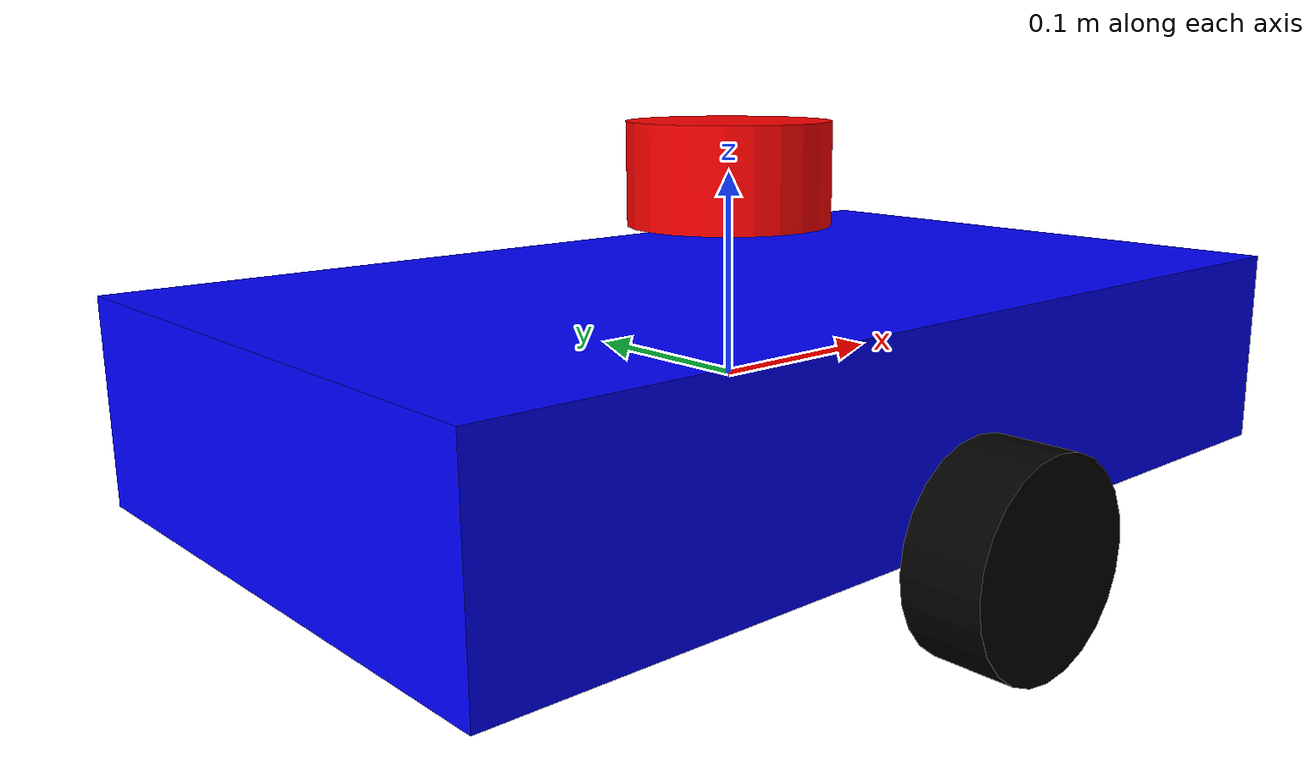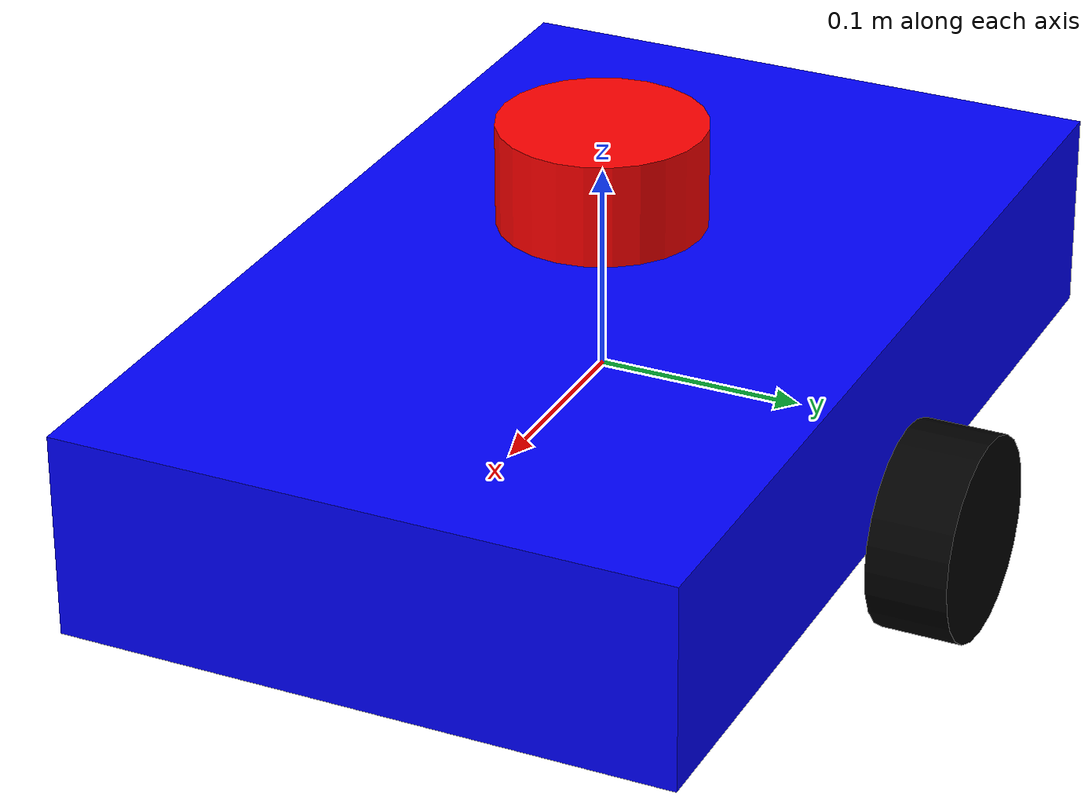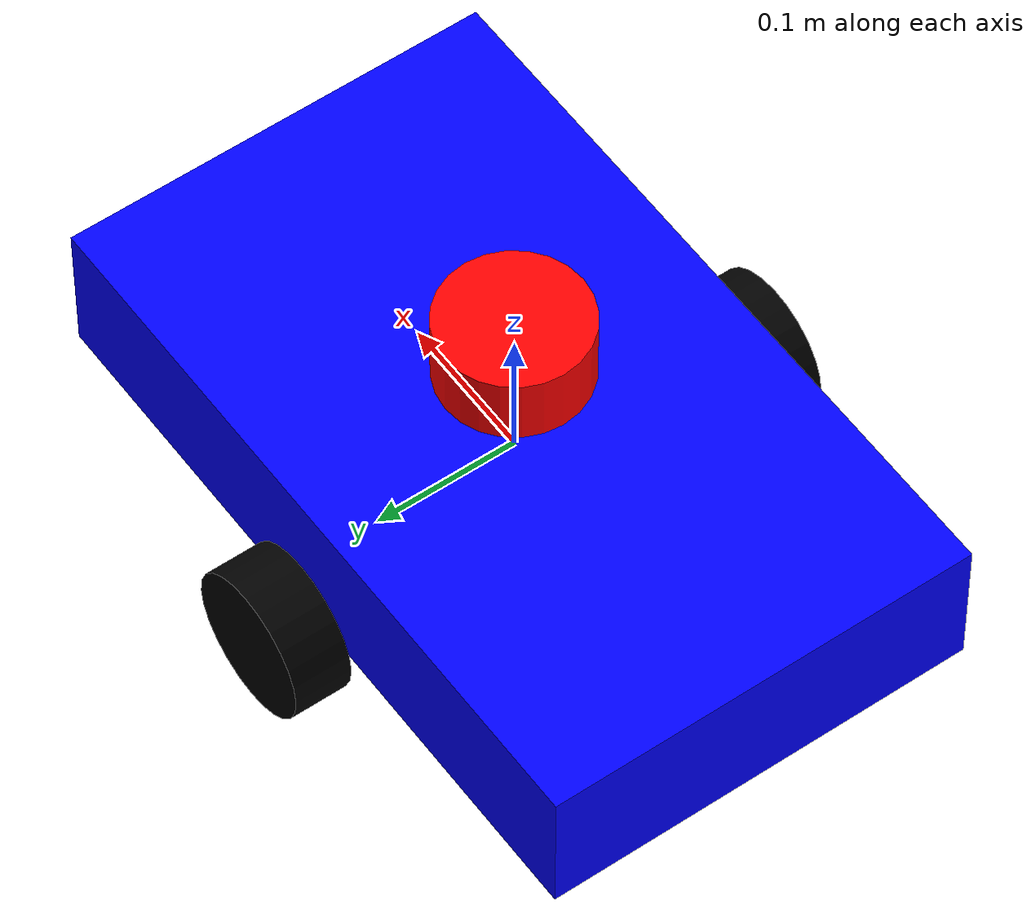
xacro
<?xml version="1.0"?>
<robot name="simple_bot" xmlns:xacro="http://www.ros.org/wiki/xacro">

  <!-- BASE LINK -->
  <link name="base_link">
    <visual>
      <geometry><box size="0.5 0.3 0.1"/></geometry>
      <material name="blue"><color rgba="0 0 1 1"/></material>
    </visual>
    <collision>
      <geometry><box size="0.5 0.3 0.1"/></geometry>
    </collision>
    <inertial>
      <mass value="5.0"/>
      <inertia ixx="0.1" ixy="0" ixz="0" iyy="0.1" iyz="0" izz="0.1"/>
    </inertial>
  </link>

  <!-- BASE FOOTPRINT -->
  <link name="base_footprint"/>
  <joint name="base_joint" type="fixed">
    <parent link="base_link"/>
    <child link="base_footprint"/>
    <origin xyz="0 0 -0.05" rpy="0 0 0"/>
  </joint>

  <!-- LEFT WHEEL -->
  <link name="left_wheel">
    <visual>
      <geometry><cylinder radius="0.05" length="0.04"/></geometry>
      <material name="black"><color rgba="0 0 0 1"/></material>
    </visual>
    <collision>
      <geometry><cylinder radius="0.05" length="0.04"/></geometry>
    </collision>
    <inertial>
      <mass value="1.0"/>
      <inertia ixx="0.01" ixy="0" ixz="0" iyy="0.01" iyz="0" izz="0.01"/>
    </inertial>
  </link>

  <joint name="left_wheel_joint" type="continuous">
    <parent link="base_link"/>
    <child link="left_wheel"/>
    <origin xyz="0 0.175 -0.05" rpy="-1.5707 0 0"/>
    <axis xyz="0 0 1"/>
  </joint>

  <!-- RIGHT WHEEL -->
  <link name="right_wheel">
    <visual>
      <geometry><cylinder radius="0.05" length="0.04"/></geometry>
      <material name="black"><color rgba="0 0 0 1"/></material>
    </visual>
    <collision>
      <geometry><cylinder radius="0.05" length="0.04"/></geometry>
    </collision>
    <inertial>
      <mass value="1.0"/>
      <inertia ixx="0.01" ixy="0" ixz="0" iyy="0.01" iyz="0" izz="0.01"/>
    </inertial>
  </link>

  <joint name="right_wheel_joint" type="continuous">
    <parent link="base_link"/>
    <child link="right_wheel"/>
    <origin xyz="0 -0.175 -0.05" rpy="-1.5707 0 0"/>
    <axis xyz="0 0 1"/>
  </joint>

  <!-- CASTER WHEEL (Balance) -->
  <link name="caster_wheel">
    <collision>
      <geometry><sphere radius="0.05"/></geometry>
    </collision>
    <inertial>
      <mass value="0.1"/>
      <inertia ixx="0.001" ixy="0" ixz="0" iyy="0.001" iyz="0" izz="0.001"/>
    </inertial>
  </link>
  <joint name="caster_joint" type="fixed">
    <parent link="base_link"/>
    <child link="caster_wheel"/>
    <origin xyz="0.2 0 -0.05" rpy="0 0 0"/>
  </joint>

  <!-- LIDAR -->
  <link name="lidar_link">
    <visual>
      <geometry><cylinder radius="0.05" length="0.05"/></geometry>
      <material name="red"><color rgba="1 0 0 1"/></material>
    </visual>
  </link>

  <joint name="lidar_joint" type="fixed">
    <parent link="base_link"/>
    <child link="lidar_link"/>
    <origin xyz="0 0 0.1" rpy="0 0 0"/>
  </joint>

  <!-- GAZEBO PLUGINS -->
  <gazebo>
    <plugin filename="gz-sim-diff-drive-system" name="gz::sim::systems::DiffDrive">
      <left_joint>left_wheel_joint</left_joint>
      <right_joint>right_wheel_joint</right_joint>
      <wheel_separation>0.35</wheel_separation>
      <wheel_radius>0.05</wheel_radius>
      <odom_publish_frequency>20</odom_publish_frequency>
      <topic>cmd_vel</topic>
      <odom_topic>odom</odom_topic>
      <tf_topic>tf</tf_topic>
      <frame_id>odom</frame_id>
      <child_frame_id>base_link</child_frame_id> <!-- CHANGED FROM base_footprint -->
    </plugin>
  </gazebo>

  <gazebo reference="lidar_link">
    <sensor name="lidar" type="gpu_lidar">
      <always_on>true</always_on>
      <update_rate>10</update_rate>
      <topic>scan</topic>
      <gz_frame_id>lidar_link</gz_frame_id>
      <visualize>true</visualize>
      <lidar>
        <scan>
          <horizontal>
            <samples>360</samples>
            <resolution>1</resolution>
            <min_angle>-3.14</min_angle>
            <max_angle>3.14</max_angle>
          </horizontal>
        </scan>
        <range>
          <min>0.15</min>
          <max>12.0</max>
        </range>
      </lidar>
    </sensor>
  </gazebo>

</robot>
